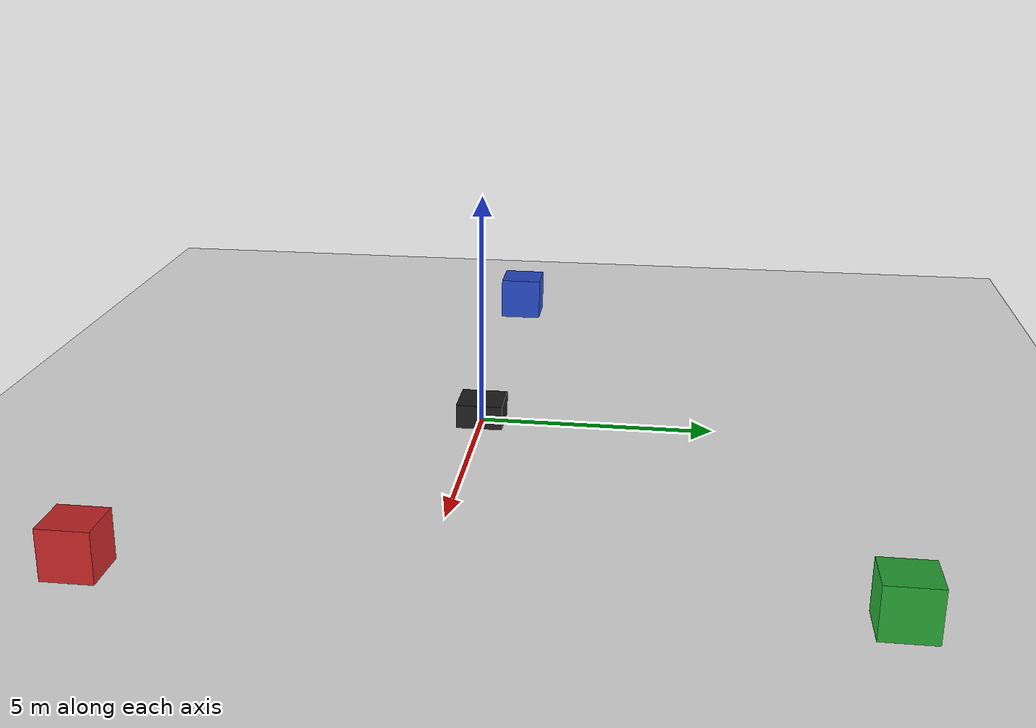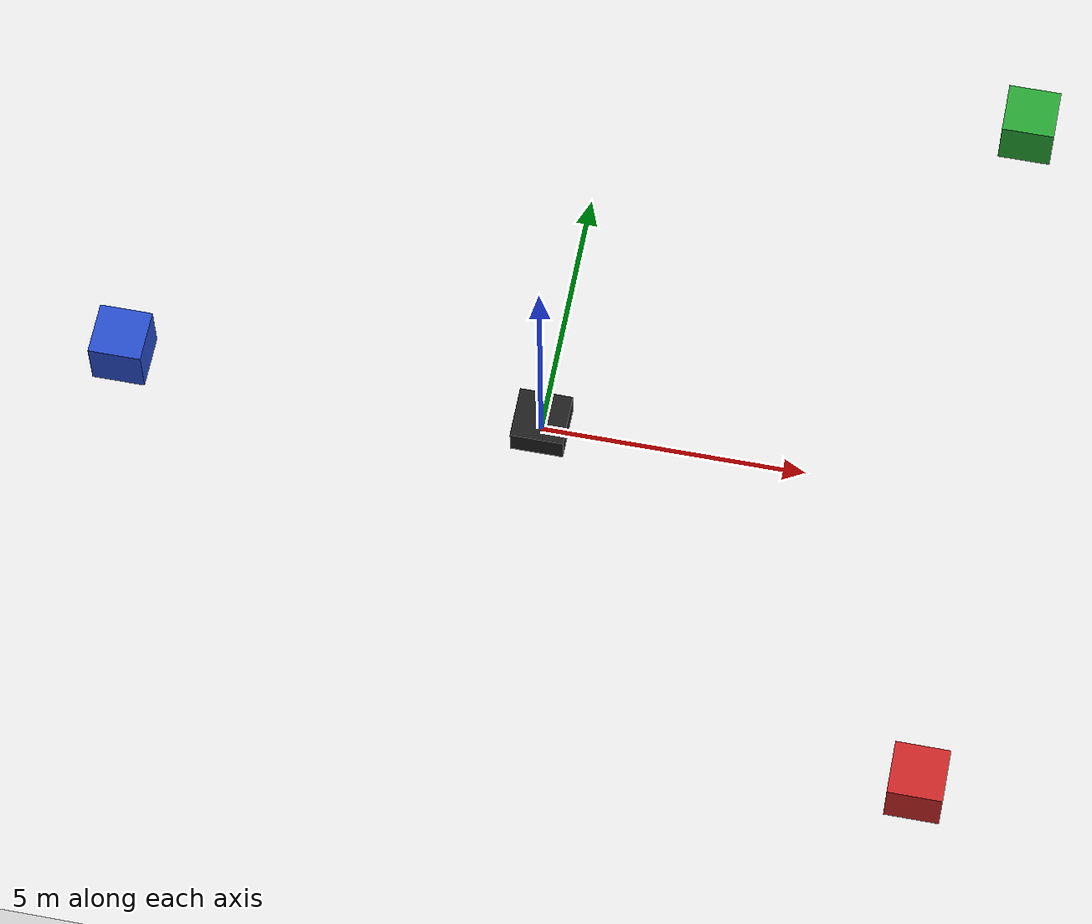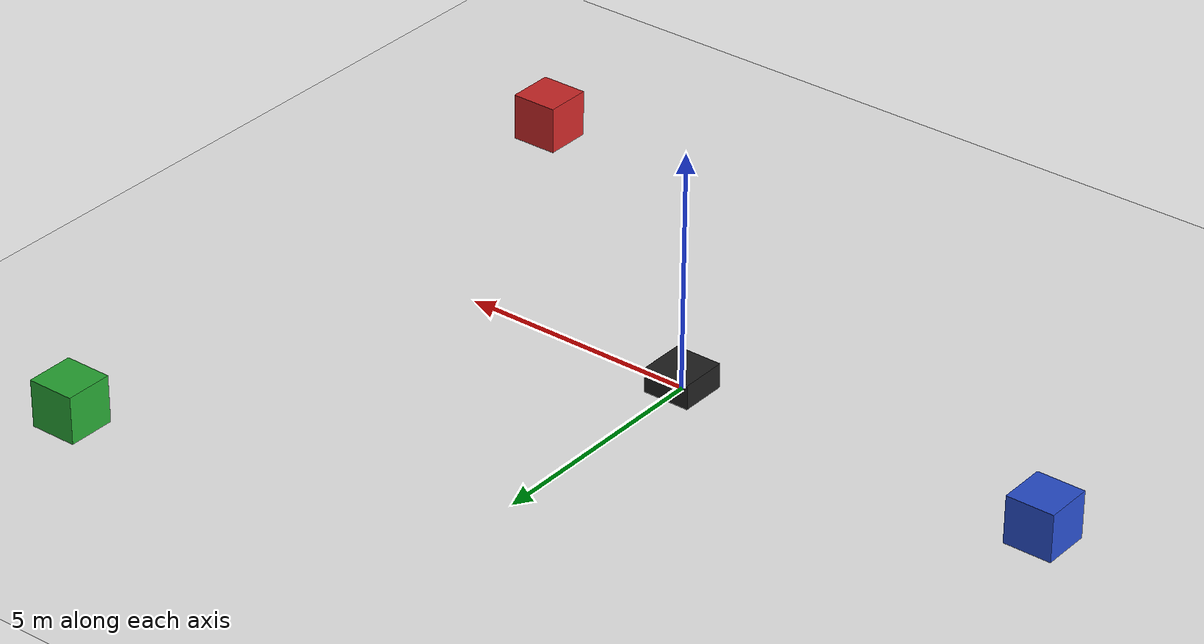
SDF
<sdf version='1.4'>
  <world name='default'>
    <light name='sun' type='directional'>
      <cast_shadows>1</cast_shadows>
      <pose>0 0 10 0 -0 0</pose>
      <diffuse>0.8 0.8 0.8 1</diffuse>
      <specular>0.2 0.2 0.2 1</specular>
      <attenuation>
        <range>1000</range>
        <constant>0.9</constant>
        <linear>0.01</linear>
        <quadratic>0.001</quadratic>
      </attenuation>
      <direction>-0.5 0.1 -0.9</direction>
      <spot>
        <inner_angle>0</inner_angle>
        <outer_angle>0</outer_angle>
        <falloff>0</falloff>
      </spot>
    </light>
    <physics type='ode'>
      <max_step_size>0.001</max_step_size>
      <real_time_factor>1</real_time_factor>
      <real_time_update_rate>1000</real_time_update_rate>
    </physics>
    <scene>
      <ambient>0.4 0.4 0.4 1</ambient>
      <background>0.7 0.7 0.7 1</background>
      <shadows>1</shadows>
    </scene>
    <gui fullscreen='0'>
      <camera name='user_camera'>
        <pose>-1.96923 -20.0468 4.77654 -0 0.273797 1.4042</pose>
        <view_controller>orbit</view_controller>
        <projection_type>perspective</projection_type>
      </camera>
    </gui>
    <model name='ground_plane'>
      <static>1</static>
      <link name='link'>
        <collision name='collision'>
          <geometry>
            <plane>
              <normal>0 0 1</normal>
              <size>100 100</size>
            </plane>
          </geometry>
          <surface>
            <contact>
              <collide_bitmask>65535</collide_bitmask>
              <ode/>
            </contact>
            <friction>
              <ode>
                <mu>100</mu>
                <mu2>50</mu2>
              </ode>
              <torsional>
                <ode/>
              </torsional>
            </friction>
            <bounce/>
          </surface>
          <max_contacts>10</max_contacts>
        </collision>
        <visual name='visual'>
          <cast_shadows>0</cast_shadows>
          <geometry>
            <plane>
              <normal>0 0 1</normal>
              <size>100 100</size>
            </plane>
          </geometry>
          <material>
            <script>
              <uri>file://media/materials/scripts/gazebo.material</uri>
              <name>Gazebo/White</name>
            </script>
          </material>
        </visual>
        <self_collide>0</self_collide>
        <enable_wind>0</enable_wind>
        <kinematic>0</kinematic>
      </link>
      <pose>1.08128 -4.86454 0 0 -0 0</pose>
    </model>
    <gravity>0 0 -9.8</gravity>
    <magnetic_field>6e-06 2.3e-05 -4.2e-05</magnetic_field>
    <atmosphere type='adiabatic'/>
    <wind/>
    <spherical_coordinates>
      <surface_model>EARTH_WGS84</surface_model>
      <latitude_deg>0</latitude_deg>
      <longitude_deg>0</longitude_deg>
      <elevation>0</elevation>
      <heading_deg>0</heading_deg>
    </spherical_coordinates>

    <model name='unit_box'>
      <pose>0.0 0.0 0.0 0 -0 0</pose>
      <link name='link'>
        <inertial>
          <mass>1</mass>
          <inertia>
            <ixx>0.166667</ixx>
            <ixy>0</ixy>
            <ixz>0</ixz>
            <iyy>0.166667</iyy>
            <iyz>0</iyz>
            <izz>0.166667</izz>
          </inertia>
          <pose>0 0 0 0 -0 0</pose>
        </inertial>
        <collision name='collision'>
          <geometry>
            <box>
              <size>1 1 1</size>
            </box>
          </geometry>
          <max_contacts>10</max_contacts>
          <surface>
            <contact>
              <ode/>
            </contact>
            <bounce/>
            <friction>
              <torsional>
                <ode/>
              </torsional>
              <ode/>
            </friction>
          </surface>
        </collision>
        <visual name='visual'>
          <geometry>
            <box>
              <size>1 1 1</size>
            </box>
          </geometry>
          <material>
            <script>
              <name>Gazebo/Black</name>
              <uri>file://media/materials/scripts/gazebo.material</uri>
            </script>
          </material>
        </visual>
        <self_collide>0</self_collide>
        <enable_wind>0</enable_wind>
        <kinematic>0</kinematic>
      </link>
    </model>
    <model name='unit_box_0'>
      <pose>-8.00000 0.00000 0.500000 0 -0 0</pose>
      <link name='link'>
        <inertial>
          <mass>1</mass>
          <inertia>
            <ixx>0.166667</ixx>
            <ixy>0</ixy>
            <ixz>0</ixz>
            <iyy>0.166667</iyy>
            <iyz>0</iyz>
            <izz>0.166667</izz>
          </inertia>
          <pose>0 0 0 0 -0 0</pose>
        </inertial>
        <collision name='collision'>
          <geometry>
            <box>
              <size>1 1 1</size>
            </box>
          </geometry>
          <max_contacts>10</max_contacts>
          <surface>
            <contact>
              <ode/>
            </contact>
            <bounce/>
            <friction>
              <torsional>
                <ode/>
              </torsional>
              <ode/>
            </friction>
          </surface>
        </collision>
        <visual name='visual'>
          <geometry>
            <box>
              <size>1 1 1</size>
            </box>
          </geometry>
          <material>
            <script>
              <name>Gazebo/Blue</name>
              <uri>file://media/materials/scripts/gazebo.material</uri>
            </script>
          </material>
        </visual>
        <self_collide>0</self_collide>
        <enable_wind>0</enable_wind>
        <kinematic>0</kinematic>
      </link>
    </model>
    <model name='unit_box_1'>
      <pose>8.000000 8.000000 0.500000 0 -0 0</pose>
      <link name='link'>
        <inertial>
          <mass>1</mass>
          <inertia>
            <ixx>0.166667</ixx>
            <ixy>0</ixy>
            <ixz>0</ixz>
            <iyy>0.166667</iyy>
            <iyz>0</iyz>
            <izz>0.166667</izz>
          </inertia>
          <pose>0 0 0 0 -0 0</pose>
        </inertial>
        <collision name='collision'>
          <geometry>
            <box>
              <size>1 1 1</size>
            </box>
          </geometry>
          <max_contacts>10</max_contacts>
          <surface>
            <contact>
              <ode/>
            </contact>
            <bounce/>
            <friction>
              <torsional>
                <ode/>
              </torsional>
              <ode/>
            </friction>
          </surface>
        </collision>
        <visual name='visual'>
          <geometry>
            <box>
              <size>1 1 1</size>
            </box>
          </geometry>
          <material>
            <script>
              <name>Gazebo/Green</name>
              <uri>file://media/materials/scripts/gazebo.material</uri>
            </script>
          </material>
        </visual>
        <self_collide>0</self_collide>
        <enable_wind>0</enable_wind>
        <kinematic>0</kinematic>
      </link>
    </model>
    <model name='unit_box_2'>
      <pose>8.000000 -6.000000 0.500000 0 -0 0</pose>
      <link name='link'>
        <inertial>
          <mass>1</mass>
          <inertia>
            <ixx>0.166667</ixx>
            <ixy>0</ixy>
            <ixz>0</ixz>
            <iyy>0.166667</iyy>
            <iyz>0</iyz>
            <izz>0.166667</izz>
          </inertia>
          <pose>0 0 0 0 -0 0</pose>
        </inertial>
        <collision name='collision'>
          <geometry>
            <box>
              <size>1 1 1</size>
            </box>
          </geometry>
          <max_contacts>10</max_contacts>
          <surface>
            <contact>
              <ode/>
            </contact>
            <bounce/>
            <friction>
              <torsional>
                <ode/>
              </torsional>
              <ode/>
            </friction>
          </surface>
        </collision>
        <visual name='visual'>
          <geometry>
            <box>
              <size>1 1 1</size>
            </box>
          </geometry>
          <material>
            <script>
              <name>Gazebo/Red</name>
              <uri>file://media/materials/scripts/gazebo.material</uri>
            </script>
          </material>
        </visual>
        <self_collide>0</self_collide>
        <enable_wind>0</enable_wind>
        <kinematic>0</kinematic>
      </link>
    </model>
  </world>
</sdf>
